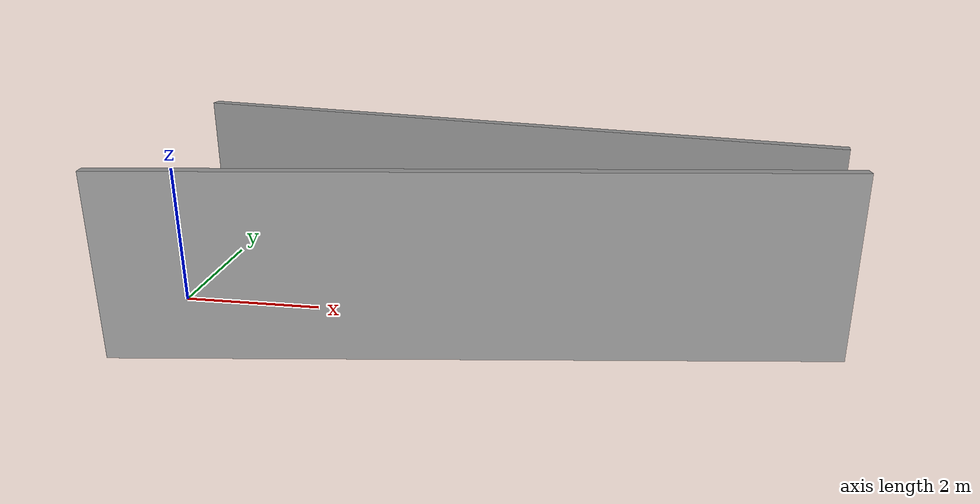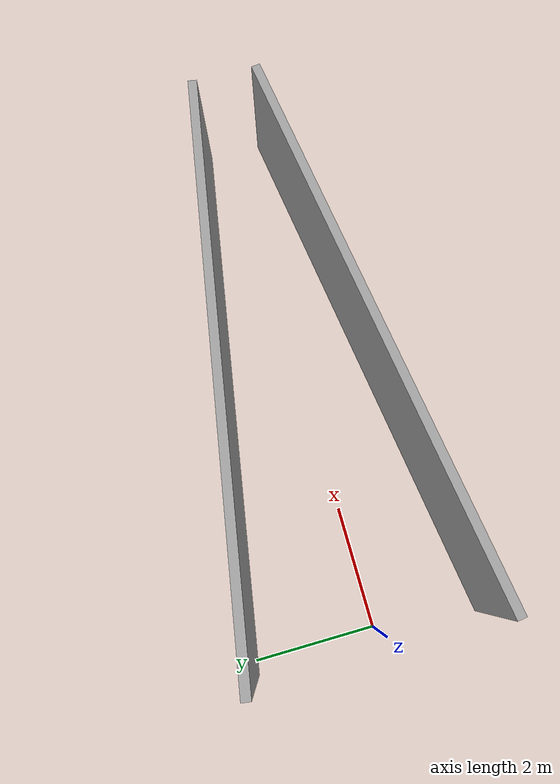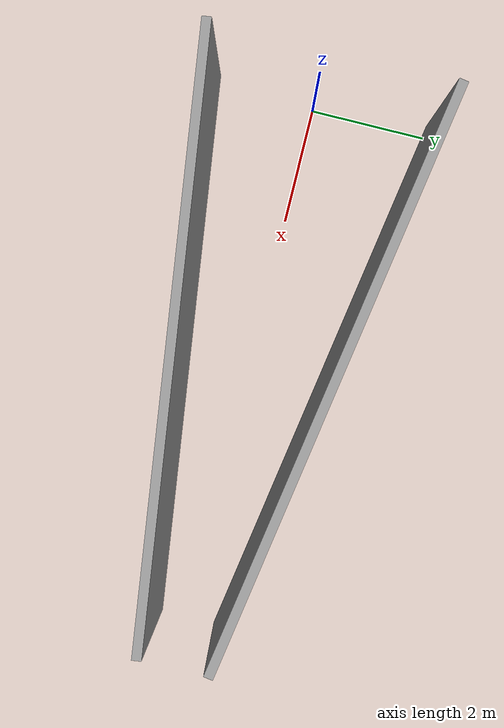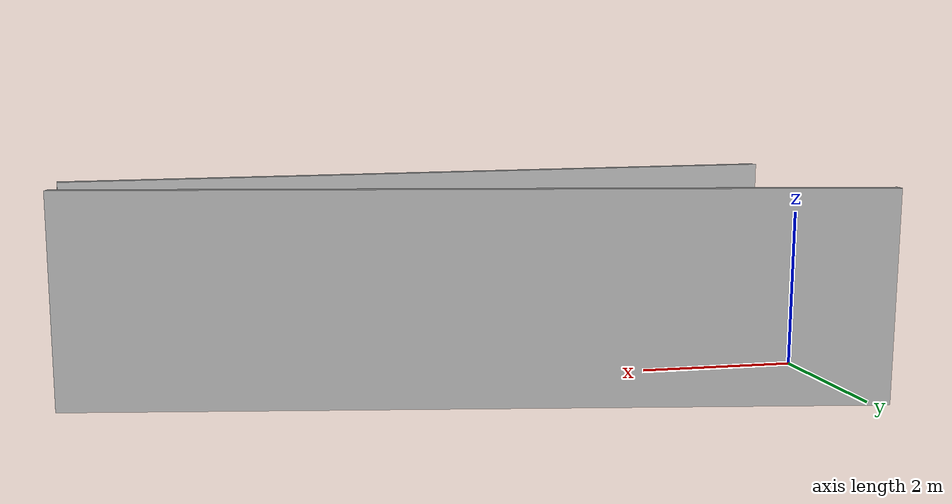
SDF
<?xml version='1.0'?>
<sdf version='1.7'>
  <model name='ten_corridor_4'>
    <pose>4.475 0.145903 0 0 -0 0</pose>
    <link name='Wall_4'>
      <collision name='Wall_4_Collision'>
        <geometry>
          <box>
            <size>9.5027 0.15 2.5</size>
          </box>
        </geometry>
        <pose>0 0 1.25 0 -0 0</pose>
      </collision>
      <visual name='Wall_4_Visual'>
        <pose>0 0 1.25 0 -0 0</pose>
        <geometry>
          <box>
            <size>9.5027 0.15 2.5</size>
          </box>
        </geometry>
        <material>
          <script>
            <uri>file://media/materials/scripts/gazebo.material</uri>
            <name>Gazebo/Grey</name>
          </script>
          <ambient>1 1 1 1</ambient>
        </material>
        <meta>
          <layer>0</layer>
        </meta>
      </visual>
      <pose>0 1.1691 0 0 -0 -0.16216</pose>
    </link>
    <link name='Wall_6'>
      <collision name='Wall_6_Collision'>
        <geometry>
          <box>
            <size>9.46292 0.15 2.5</size>
          </box>
        </geometry>
        <pose>0 0 1.25 0 -0 0</pose>
      </collision>
      <visual name='Wall_6_Visual'>
        <pose>0 0 1.25 0 -0 0</pose>
        <geometry>
          <box>
            <size>9.46292 0.15 2.5</size>
          </box>
        </geometry>
        <material>
          <script>
            <uri>file://media/materials/scripts/gazebo.material</uri>
            <name>Gazebo/Grey</name>
          </script>
          <ambient>1 1 1 1</ambient>
        </material>
        <meta>
          <layer>0</layer>
        </meta>
      </visual>
      <pose>0 -1.3059 0 0 -0 0.133545</pose>
    </link>
    <static>1</static>
  </model>
</sdf>
